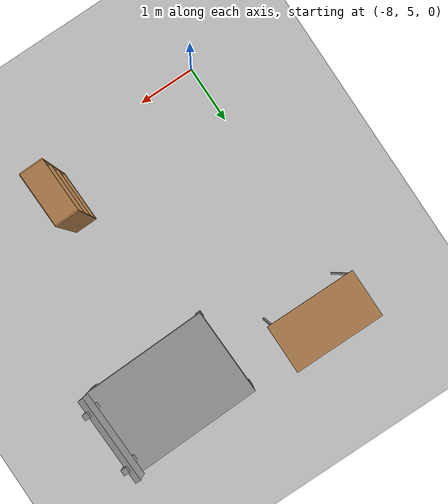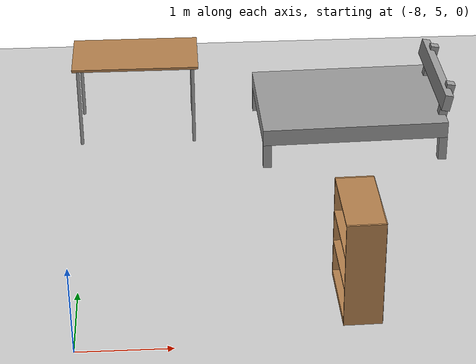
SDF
<sdf version="1.6">
 <world name="default">
  <model name="ground_plane">
   <static>1</static>
   <link name="link">
    <collision name="collision">
     <geometry><plane><normal>0 0 1</normal><size>100 100</size></plane></geometry>
     <surface><friction><ode><mu>100</mu><mu2>50</mu2></ode></friction></surface>
    </collision>
    <visual name="visual">
     <cast_shadows>0</cast_shadows>
     <geometry><plane><normal>0 0 1</normal><size>100 100</size></plane></geometry>
     <material>
      <script><uri>file://media/materials/scripts/gazebo.material</uri><name>Gazebo/Grey</name></script>
     </material>
    </visual>
   </link>
  </model>
  <model name="table_clone_1">
   <static>1</static>
   <link name="link">
    <collision name="surface">
     <pose>0 0 1 0 -0 0</pose>
     <geometry><box><size>1.5 0.8 0.03</size></box></geometry>
     <surface><friction><ode><mu>0.6</mu><mu2>0.6</mu2></ode></friction></surface>
    </collision>
    <visual name="visual1">
     <pose>0 0 1 0 -0 0</pose>
     <geometry><box><size>1.5 0.8 0.03</size></box></geometry>
     <material>
      <script><uri>file://media/materials/scripts/gazebo.material</uri><name>Gazebo/Wood</name></script>
     </material>
    </visual>
    <collision name="front_left_leg">
     <pose>0.68 0.38 0.5 0 -0 0</pose>
     <geometry><cylinder><radius>0.02</radius><length>1</length></cylinder></geometry>
    </collision>
    <visual name="front_left_leg">
     <pose>0.68 0.38 0.5 0 -0 0</pose>
     <geometry><cylinder><radius>0.02</radius><length>1</length></cylinder></geometry>
     <material>
      <script><uri>file://media/materials/scripts/gazebo.material</uri><name>Gazebo/Grey</name></script>
     </material>
    </visual>
    <collision name="front_right_leg">
     <pose>0.68 -0.38 0.5 0 -0 0</pose>
     <geometry><cylinder><radius>0.02</radius><length>1</length></cylinder></geometry>
    </collision>
    <visual name="front_right_leg">
     <pose>0.68 -0.38 0.5 0 -0 0</pose>
     <geometry><cylinder><radius>0.02</radius><length>1</length></cylinder></geometry>
     <material>
      <script><uri>file://media/materials/scripts/gazebo.material</uri><name>Gazebo/Grey</name></script>
     </material>
    </visual>
    <collision name="back_right_leg">
     <pose>-0.68 -0.38 0.5 0 -0 0</pose>
     <geometry><cylinder><radius>0.02</radius><length>1</length></cylinder></geometry>
    </collision>
    <visual name="back_right_leg">
     <pose>-0.68 -0.38 0.5 0 -0 0</pose>
     <geometry><cylinder><radius>0.02</radius><length>1</length></cylinder></geometry>
     <material>
      <script><uri>file://media/materials/scripts/gazebo.material</uri><name>Gazebo/Grey</name></script>
     </material>
    </visual>
    <collision name="back_left_leg">
     <pose>-0.68 0.38 0.5 0 -0 0</pose>
     <geometry><cylinder><radius>0.02</radius><length>1</length></cylinder></geometry>
    </collision>
    <visual name="back_left_leg">
     <pose>-0.68 0.38 0.5 0 -0 0</pose>
     <geometry><cylinder><radius>0.02</radius><length>1</length></cylinder></geometry>
     <material>
      <script><uri>file://media/materials/scripts/gazebo.material</uri><name>Gazebo/Grey</name></script>
     </material>
    </visual>
   </link>
   <pose>-7.38271 9.48873 0 0 -0 0</pose>
  </model>
  <model name="bookshelf_clone_0">
   <static>1</static>
   <link name="link">
    <inertial><mass>1</mass></inertial>
    <collision name="back">
     <pose>0 0.005 0.6 0 -0 0</pose>
     <geometry><box><size>0.9 0.01 1.2</size></box></geometry>
    </collision>
    <visual name="visual1">
     <pose>0 0.005 0.6 0 -0 0</pose>
     <geometry><box><size>0.9 0.01 1.2</size></box></geometry>
     <material>
      <script><uri>file://media/materials/scripts/gazebo.material</uri><name>Gazebo/Wood</name></script>
     </material>
    </visual>
    <collision name="left_side">
     <pose>0.45 -0.195 0.6 0 -0 0</pose>
     <geometry><box><size>0.02 0.4 1.2</size></box></geometry>
    </collision>
    <visual name="visual2">
     <pose>0.45 -0.195 0.6 0 -0 0</pose>
     <geometry><box><size>0.02 0.4 1.2</size></box></geometry>
     <material>
      <script><uri>file://media/materials/scripts/gazebo.material</uri><name>Gazebo/Wood</name></script>
     </material>
    </visual>
    <collision name="right_side">
     <pose>-0.45 -0.195 0.6 0 -0 0</pose>
     <geometry><box><size>0.02 0.4 1.2</size></box></geometry>
    </collision>
    <visual name="visual3">
     <pose>-0.45 -0.195 0.6 0 -0 0</pose>
     <geometry><box><size>0.02 0.4 1.2</size></box></geometry>
     <material>
      <script><uri>file://media/materials/scripts/gazebo.material</uri><name>Gazebo/Wood</name></script>
     </material>
    </visual>
    <collision name="bottom">
     <pose>0 -0.195 0.03 0 -0 0</pose>
     <geometry><box><size>0.88 0.4 0.06</size></box></geometry>
    </collision>
    <visual name="visual4">
     <pose>0 -0.195 0.03 0 -0 0</pose>
     <geometry><box><size>0.88 0.4 0.06</size></box></geometry>
     <material>
      <script><uri>file://media/materials/scripts/gazebo.material</uri><name>Gazebo/Wood</name></script>
     </material>
    </visual>
    <collision name="top">
     <pose>0 -0.195 1.19 0 -0 0</pose>
     <geometry><box><size>0.88 0.4 0.02</size></box></geometry>
    </collision>
    <visual name="visual5">
     <pose>0 -0.195 1.19 0 -0 0</pose>
     <geometry><box><size>0.88 0.4 0.02</size></box></geometry>
     <material>
      <script><uri>file://media/materials/scripts/gazebo.material</uri><name>Gazebo/Wood</name></script>
     </material>
    </visual>
    <collision name="low_shelf">
     <pose>0 -0.195 0.43 0 -0 0</pose>
     <geometry><box><size>0.88 0.4 0.02</size></box></geometry>
    </collision>
    <visual name="visual6">
     <pose>0 -0.195 0.43 0 -0 0</pose>
     <geometry><box><size>0.88 0.4 0.02</size></box></geometry>
     <material>
      <script><uri>file://media/materials/scripts/gazebo.material</uri><name>Gazebo/Wood</name></script>
     </material>
    </visual>
    <collision name="high_shelf">
     <pose>0 -0.195 0.8 0 -0 0</pose>
     <geometry><box><size>0.88 0.4 0.02</size></box></geometry>
    </collision>
    <visual name="visual7">
     <pose>0 -0.195 0.8 0 -0 0</pose>
     <geometry><box><size>0.88 0.4 0.02</size></box></geometry>
     <material>
      <script><uri>file://media/materials/scripts/gazebo.material</uri><name>Gazebo/Wood</name></script>
     </material>
    </visual>
   </link>
   <pose>-4.90514 5.73789 0 0 0 -1.5489</pose>
  </model>
  <model name="bed_clone_0">
   <link name="link_0">
    <pose>0.088421 0 0.349817 0 -0 0</pose>
    <inertial>
     <mass>1</mass>
     <inertia>
      <ixx>0.166667</ixx>
      <ixy>0</ixy>
      <ixz>0</ixz>
      <iyy>0.166667</iyy>
      <iyz>0</iyz>
      <izz>0.166667</izz>
     </inertia>
    </inertial>
    <visual name="visual">
     <geometry><box><size>2.2 1.5 0.2</size></box></geometry>
     <material>
      <lighting>1</lighting>
      <script><uri>file://media/materials/scripts/gazebo.material</uri><name>Gazebo/Grey</name></script>
      <shader type="pixel"><normal_map>__default__</normal_map></shader>
      <ambient>0.3 0.3 0.3 1</ambient>
      <diffuse>0.7 0.7 0.7 1</diffuse>
      <specular>0.01 0.01 0.01 1</specular>
      <emissive>0 0 0 1</emissive>
     </material>
    </visual>
    <collision name="collision">
     <geometry><box><size>2.2 1.5 0.2</size></box></geometry>
     <surface>
      <friction>
       <ode><mu>1</mu><mu2>1</mu2><fdir1>0 0 0</fdir1><slip1>0</slip1><slip2>0</slip2></ode>
       <torsional>
        <coefficient>1</coefficient>
        <patch_radius>0</patch_radius>
        <surface_radius>0</surface_radius>
        <use_patch_radius>1</use_patch_radius>
        <ode><slip>0</slip></ode>
       </torsional>
      </friction>
      <bounce><restitution_coefficient>0</restitution_coefficient><threshold>1e+06</threshold></bounce>
      <contact>
       <collide_without_contact>0</collide_without_contact>
       <collide_without_contact_bitmask>1</collide_without_contact_bitmask>
       <collide_bitmask>1</collide_bitmask>
       <ode>
        <soft_cfm>0</soft_cfm>
        <soft_erp>0.2</soft_erp>
        <kp>1e+13</kp>
        <kd>1</kd>
        <max_vel>0.01</max_vel>
        <min_depth>0</min_depth>
       </ode>
       <bullet>
        <split_impulse>1</split_impulse>
        <split_impulse_penetration_threshold>-0.01</split_impulse_penetration_threshold>
        <soft_cfm>0</soft_cfm>
        <soft_erp>0.2</soft_erp>
        <kp>1e+13</kp>
        <kd>1</kd>
       </bullet>
      </contact>
     </surface>
    </collision>
   </link>
   <link name="link_2">
    <pose>0.088421 0 0.099817 0 -0 0</pose>
    <inertial>
     <mass>1</mass>
     <inertia>
      <ixx>0.166667</ixx>
      <ixy>0</ixy>
      <ixz>0</ixz>
      <iyy>0.166667</iyy>
      <iyz>0</iyz>
      <izz>0.166667</izz>
     </inertia>
    </inertial>
    <visual name="visual">
     <geometry><box><size>0.1 0.1 0.3</size></box></geometry>
     <material>
      <lighting>1</lighting>
      <script><uri>file://media/materials/scripts/gazebo.material</uri><name>Gazebo/Grey</name></script>
      <shader type="pixel"><normal_map>__default__</normal_map></shader>
      <ambient>0.3 0.3 0.3 1</ambient>
      <diffuse>0.7 0.7 0.7 1</diffuse>
      <specular>0.01 0.01 0.01 1</specular>
      <emissive>0 0 0 1</emissive>
     </material>
    </visual>
    <collision name="collision">
     <geometry><box><size>0.1 0.1 0.3</size></box></geometry>
     <surface>
      <friction>
       <ode><mu>1</mu><mu2>1</mu2><fdir1>0 0 0</fdir1><slip1>0</slip1><slip2>0</slip2></ode>
       <torsional>
        <coefficient>1</coefficient>
        <patch_radius>0</patch_radius>
        <surface_radius>0</surface_radius>
        <use_patch_radius>1</use_patch_radius>
        <ode><slip>0</slip></ode>
       </torsional>
      </friction>
      <bounce><restitution_coefficient>0</restitution_coefficient><threshold>1e+06</threshold></bounce>
      <contact>
       <collide_without_contact>0</collide_without_contact>
       <collide_without_contact_bitmask>1</collide_without_contact_bitmask>
       <collide_bitmask>1</collide_bitmask>
       <ode>
        <soft_cfm>0</soft_cfm>
        <soft_erp>0.2</soft_erp>
        <kp>1e+13</kp>
        <kd>1</kd>
        <max_vel>0.01</max_vel>
        <min_depth>0</min_depth>
       </ode>
       <bullet>
        <split_impulse>1</split_impulse>
        <split_impulse_penetration_threshold>-0.01</split_impulse_penetration_threshold>
        <soft_cfm>0</soft_cfm>
        <soft_erp>0.2</soft_erp>
        <kp>1e+13</kp>
        <kd>1</kd>
       </bullet>
      </contact>
     </surface>
    </collision>
   </link>
   <link name="link_2_clone">
    <pose>-0.961579 -0.7 0.099817 0 -0 0</pose>
    <inertial>
     <mass>1</mass>
     <inertia>
      <ixx>0.166667</ixx>
      <ixy>0</ixy>
      <ixz>0</ixz>
      <iyy>0.166667</iyy>
      <iyz>0</iyz>
      <izz>0.166667</izz>
     </inertia>
    </inertial>
    <visual name="visual">
     <geometry><box><size>0.1 0.1 0.3</size></box></geometry>
     <material>
      <lighting>1</lighting>
      <script><uri>file://media/materials/scripts/gazebo.material</uri><name>Gazebo/Grey</name></script>
      <shader type="pixel"><normal_map>__default__</normal_map></shader>
      <ambient>0.3 0.3 0.3 1</ambient>
      <diffuse>0.7 0.7 0.7 1</diffuse>
      <specular>0.01 0.01 0.01 1</specular>
      <emissive>0 0 0 1</emissive>
     </material>
    </visual>
    <collision name="collision">
     <geometry><box><size>0.1 0.1 0.3</size></box></geometry>
     <surface>
      <friction>
       <ode><mu>1</mu><mu2>1</mu2><fdir1>0 0 0</fdir1><slip1>0</slip1><slip2>0</slip2></ode>
       <torsional>
        <coefficient>1</coefficient>
        <patch_radius>0</patch_radius>
        <surface_radius>0</surface_radius>
        <use_patch_radius>1</use_patch_radius>
        <ode><slip>0</slip></ode>
       </torsional>
      </friction>
      <bounce><restitution_coefficient>0</restitution_coefficient><threshold>1e+06</threshold></bounce>
      <contact>
       <collide_without_contact>0</collide_without_contact>
       <collide_without_contact_bitmask>1</collide_without_contact_bitmask>
       <collide_bitmask>1</collide_bitmask>
       <ode>
        <soft_cfm>0</soft_cfm>
        <soft_erp>0.2</soft_erp>
        <kp>1e+13</kp>
        <kd>1</kd>
        <max_vel>0.01</max_vel>
        <min_depth>0</min_depth>
       </ode>
       <bullet>
        <split_impulse>1</split_impulse>
        <split_impulse_penetration_threshold>-0.01</split_impulse_penetration_threshold>
        <soft_cfm>0</soft_cfm>
        <soft_erp>0.2</soft_erp>
        <kp>1e+13</kp>
        <kd>1</kd>
       </bullet>
      </contact>
     </surface>
    </collision>
   </link>
   <link name="link_2_clone_0">
    <pose>1.13842 -0.7 0.099817 0 -0 0</pose>
    <inertial>
     <mass>1</mass>
     <inertia>
      <ixx>0.166667</ixx>
      <ixy>0</ixy>
      <ixz>0</ixz>
      <iyy>0.166667</iyy>
      <iyz>0</iyz>
      <izz>0.166667</izz>
     </inertia>
    </inertial>
    <visual name="visual">
     <geometry><box><size>0.1 0.1 0.3</size></box></geometry>
     <material>
      <lighting>1</lighting>
      <script><uri>file://media/materials/scripts/gazebo.material</uri><name>Gazebo/Grey</name></script>
      <shader type="pixel"><normal_map>__default__</normal_map></shader>
      <ambient>0.3 0.3 0.3 1</ambient>
      <diffuse>0.7 0.7 0.7 1</diffuse>
      <specular>0.01 0.01 0.01 1</specular>
      <emissive>0 0 0 1</emissive>
     </material>
    </visual>
    <collision name="collision">
     <geometry><box><size>0.1 0.1 0.3</size></box></geometry>
     <surface>
      <friction>
       <ode><mu>1</mu><mu2>1</mu2><fdir1>0 0 0</fdir1><slip1>0</slip1><slip2>0</slip2></ode>
       <torsional>
        <coefficient>1</coefficient>
        <patch_radius>0</patch_radius>
        <surface_radius>0</surface_radius>
        <use_patch_radius>1</use_patch_radius>
        <ode><slip>0</slip></ode>
       </torsional>
      </friction>
      <bounce><restitution_coefficient>0</restitution_coefficient><threshold>1e+06</threshold></bounce>
      <contact>
       <collide_without_contact>0</collide_without_contact>
       <collide_without_contact_bitmask>1</collide_without_contact_bitmask>
       <collide_bitmask>1</collide_bitmask>
       <ode>
        <soft_cfm>0</soft_cfm>
        <soft_erp>0.2</soft_erp>
        <kp>1e+13</kp>
        <kd>1</kd>
        <max_vel>0.01</max_vel>
        <min_depth>0</min_depth>
       </ode>
       <bullet>
        <split_impulse>1</split_impulse>
        <split_impulse_penetration_threshold>-0.01</split_impulse_penetration_threshold>
        <soft_cfm>0</soft_cfm>
        <soft_erp>0.2</soft_erp>
        <kp>1e+13</kp>
        <kd>1</kd>
       </bullet>
      </contact>
     </surface>
    </collision>
   </link>
   <link name="link_2_clone_1">
    <pose>1.13842 0.7 0.099817 0 -0 0</pose>
    <inertial>
     <mass>1</mass>
     <inertia>
      <ixx>0.166667</ixx>
      <ixy>0</ixy>
      <ixz>0</ixz>
      <iyy>0.166667</iyy>
      <iyz>0</iyz>
      <izz>0.166667</izz>
     </inertia>
    </inertial>
    <visual name="visual">
     <geometry><box><size>0.1 0.1 0.3</size></box></geometry>
     <material>
      <lighting>1</lighting>
      <script><uri>file://media/materials/scripts/gazebo.material</uri><name>Gazebo/Grey</name></script>
      <shader type="pixel"><normal_map>__default__</normal_map></shader>
      <ambient>0.3 0.3 0.3 1</ambient>
      <diffuse>0.7 0.7 0.7 1</diffuse>
      <specular>0.01 0.01 0.01 1</specular>
      <emissive>0 0 0 1</emissive>
     </material>
    </visual>
    <collision name="collision">
     <geometry><box><size>0.1 0.1 0.3</size></box></geometry>
     <surface>
      <friction>
       <ode><mu>1</mu><mu2>1</mu2><fdir1>0 0 0</fdir1><slip1>0</slip1><slip2>0</slip2></ode>
       <torsional>
        <coefficient>1</coefficient>
        <patch_radius>0</patch_radius>
        <surface_radius>0</surface_radius>
        <use_patch_radius>1</use_patch_radius>
        <ode><slip>0</slip></ode>
       </torsional>
      </friction>
      <bounce><restitution_coefficient>0</restitution_coefficient><threshold>1e+06</threshold></bounce>
      <contact>
       <collide_without_contact>0</collide_without_contact>
       <collide_without_contact_bitmask>1</collide_without_contact_bitmask>
       <collide_bitmask>1</collide_bitmask>
       <ode>
        <soft_cfm>0</soft_cfm>
        <soft_erp>0.2</soft_erp>
        <kp>1e+13</kp>
        <kd>1</kd>
        <max_vel>0.01</max_vel>
        <min_depth>0</min_depth>
       </ode>
       <bullet>
        <split_impulse>1</split_impulse>
        <split_impulse_penetration_threshold>-0.01</split_impulse_penetration_threshold>
        <soft_cfm>0</soft_cfm>
        <soft_erp>0.2</soft_erp>
        <kp>1e+13</kp>
        <kd>1</kd>
       </bullet>
      </contact>
     </surface>
    </collision>
   </link>
   <link name="link_2_clone_2">
    <pose>-0.961579 0.7 0.099817 0 -0 0</pose>
    <inertial>
     <mass>1</mass>
     <inertia>
      <ixx>0.166667</ixx>
      <ixy>0</ixy>
      <ixz>0</ixz>
      <iyy>0.166667</iyy>
      <iyz>0</iyz>
      <izz>0.166667</izz>
     </inertia>
    </inertial>
    <visual name="visual">
     <geometry><box><size>0.1 0.1 0.3</size></box></geometry>
     <material>
      <lighting>1</lighting>
      <script><uri>file://media/materials/scripts/gazebo.material</uri><name>Gazebo/Grey</name></script>
      <shader type="pixel"><normal_map>__default__</normal_map></shader>
      <ambient>0.3 0.3 0.3 1</ambient>
      <diffuse>0.7 0.7 0.7 1</diffuse>
      <specular>0.01 0.01 0.01 1</specular>
      <emissive>0 0 0 1</emissive>
     </material>
    </visual>
    <collision name="collision">
     <geometry><box><size>0.1 0.1 0.3</size></box></geometry>
     <surface>
      <friction>
       <ode><mu>1</mu><mu2>1</mu2><fdir1>0 0 0</fdir1><slip1>0</slip1><slip2>0</slip2></ode>
       <torsional>
        <coefficient>1</coefficient>
        <patch_radius>0</patch_radius>
        <surface_radius>0</surface_radius>
        <use_patch_radius>1</use_patch_radius>
        <ode><slip>0</slip></ode>
       </torsional>
      </friction>
      <bounce><restitution_coefficient>0</restitution_coefficient><threshold>1e+06</threshold></bounce>
      <contact>
       <collide_without_contact>0</collide_without_contact>
       <collide_without_contact_bitmask>1</collide_without_contact_bitmask>
       <collide_bitmask>1</collide_bitmask>
       <ode>
        <soft_cfm>0</soft_cfm>
        <soft_erp>0.2</soft_erp>
        <kp>1e+13</kp>
        <kd>1</kd>
        <max_vel>0.01</max_vel>
        <min_depth>0</min_depth>
       </ode>
       <bullet>
        <split_impulse>1</split_impulse>
        <split_impulse_penetration_threshold>-0.01</split_impulse_penetration_threshold>
        <soft_cfm>0</soft_cfm>
        <soft_erp>0.2</soft_erp>
        <kp>1e+13</kp>
        <kd>1</kd>
       </bullet>
      </contact>
     </surface>
    </collision>
   </link>
   <link name="link_3">
    <pose>-1.01158 -0.5 0.599817 0 -0.196 0</pose>
    <inertial>
     <mass>1</mass>
     <inertia>
      <ixx>0.166667</ixx>
      <ixy>0</ixy>
      <ixz>0</ixz>
      <iyy>0.166667</iyy>
      <iyz>0</iyz>
      <izz>0.166667</izz>
     </inertia>
    </inertial>
    <visual name="visual">
     <geometry><box><size>0.1 0.1 0.5</size></box></geometry>
     <material>
      <lighting>1</lighting>
      <script><uri>file://media/materials/scripts/gazebo.material</uri><name>Gazebo/Grey</name></script>
      <shader type="pixel"><normal_map>__default__</normal_map></shader>
      <ambient>0.3 0.3 0.3 1</ambient>
      <diffuse>0.7 0.7 0.7 1</diffuse>
      <specular>0.01 0.01 0.01 1</specular>
      <emissive>0 0 0 1</emissive>
     </material>
    </visual>
    <collision name="collision">
     <geometry><box><size>0.1 0.1 0.5</size></box></geometry>
     <surface>
      <friction>
       <ode><mu>1</mu><mu2>1</mu2><fdir1>0 0 0</fdir1><slip1>0</slip1><slip2>0</slip2></ode>
       <torsional>
        <coefficient>1</coefficient>
        <patch_radius>0</patch_radius>
        <surface_radius>0</surface_radius>
        <use_patch_radius>1</use_patch_radius>
        <ode><slip>0</slip></ode>
       </torsional>
      </friction>
      <bounce><restitution_coefficient>0</restitution_coefficient><threshold>1e+06</threshold></bounce>
      <contact>
       <collide_without_contact>0</collide_without_contact>
       <collide_without_contact_bitmask>1</collide_without_contact_bitmask>
       <collide_bitmask>1</collide_bitmask>
       <ode>
        <soft_cfm>0</soft_cfm>
        <soft_erp>0.2</soft_erp>
        <kp>1e+13</kp>
        <kd>1</kd>
        <max_vel>0.01</max_vel>
        <min_depth>0</min_depth>
       </ode>
       <bullet>
        <split_impulse>1</split_impulse>
        <split_impulse_penetration_threshold>-0.01</split_impulse_penetration_threshold>
        <soft_cfm>0</soft_cfm>
        <soft_erp>0.2</soft_erp>
        <kp>1e+13</kp>
        <kd>1</kd>
       </bullet>
      </contact>
     </surface>
    </collision>
   </link>
   <link name="link_3_clone">
    <pose>-1.01158 0.5 0.599817 0 -0.196 0</pose>
    <inertial>
     <mass>1</mass>
     <inertia>
      <ixx>0.166667</ixx>
      <ixy>0</ixy>
      <ixz>0</ixz>
      <iyy>0.166667</iyy>
      <iyz>0</iyz>
      <izz>0.166667</izz>
     </inertia>
    </inertial>
    <visual name="visual">
     <geometry><box><size>0.1 0.1 0.5</size></box></geometry>
     <material>
      <lighting>1</lighting>
      <script><uri>file://media/materials/scripts/gazebo.material</uri><name>Gazebo/Grey</name></script>
      <shader type="pixel"><normal_map>__default__</normal_map></shader>
      <ambient>0.3 0.3 0.3 1</ambient>
      <diffuse>0.7 0.7 0.7 1</diffuse>
      <specular>0.01 0.01 0.01 1</specular>
      <emissive>0 0 0 1</emissive>
     </material>
    </visual>
    <collision name="collision">
     <geometry><box><size>0.1 0.1 0.5</size></box></geometry>
     <surface>
      <friction>
       <ode><mu>1</mu><mu2>1</mu2><fdir1>0 0 0</fdir1><slip1>0</slip1><slip2>0</slip2></ode>
       <torsional>
        <coefficient>1</coefficient>
        <patch_radius>0</patch_radius>
        <surface_radius>0</surface_radius>
        <use_patch_radius>1</use_patch_radius>
        <ode><slip>0</slip></ode>
       </torsional>
      </friction>
      <bounce><restitution_coefficient>0</restitution_coefficient><threshold>1e+06</threshold></bounce>
      <contact>
       <collide_without_contact>0</collide_without_contact>
       <collide_without_contact_bitmask>1</collide_without_contact_bitmask>
       <collide_bitmask>1</collide_bitmask>
       <ode>
        <soft_cfm>0</soft_cfm>
        <soft_erp>0.2</soft_erp>
        <kp>1e+13</kp>
        <kd>1</kd>
        <max_vel>0.01</max_vel>
        <min_depth>0</min_depth>
       </ode>
       <bullet>
        <split_impulse>1</split_impulse>
        <split_impulse_penetration_threshold>-0.01</split_impulse_penetration_threshold>
        <soft_cfm>0</soft_cfm>
        <soft_erp>0.2</soft_erp>
        <kp>1e+13</kp>
        <kd>1</kd>
       </bullet>
      </contact>
     </surface>
    </collision>
   </link>
   <link name="link_5">
    <pose>-0.982367 0 0.707711 0 -0.196 0</pose>
    <inertial>
     <mass>1</mass>
     <inertia>
      <ixx>0.166667</ixx>
      <ixy>0</ixy>
      <ixz>0</ixz>
      <iyy>0.166667</iyy>
      <iyz>0</iyz>
      <izz>0.166667</izz>
     </inertia>
    </inertial>
    <visual name="visual">
     <geometry><box><size>0.1 1.5 0.2</size></box></geometry>
     <material>
      <lighting>1</lighting>
      <script><uri>file://media/materials/scripts/gazebo.material</uri><name>Gazebo/Grey</name></script>
      <shader type="pixel"><normal_map>__default__</normal_map></shader>
      <ambient>0.3 0.3 0.3 1</ambient>
      <diffuse>0.7 0.7 0.7 1</diffuse>
      <specular>0.01 0.01 0.01 1</specular>
      <emissive>0 0 0 1</emissive>
     </material>
    </visual>
    <collision name="collision">
     <geometry><box><size>0.1 1.5 0.2</size></box></geometry>
     <surface>
      <friction>
       <ode><mu>1</mu><mu2>1</mu2><fdir1>0 0 0</fdir1><slip1>0</slip1><slip2>0</slip2></ode>
       <torsional>
        <coefficient>1</coefficient>
        <patch_radius>0</patch_radius>
        <surface_radius>0</surface_radius>
        <use_patch_radius>1</use_patch_radius>
        <ode><slip>0</slip></ode>
       </torsional>
      </friction>
      <bounce><restitution_coefficient>0</restitution_coefficient><threshold>1e+06</threshold></bounce>
      <contact>
       <collide_without_contact>0</collide_without_contact>
       <collide_without_contact_bitmask>1</collide_without_contact_bitmask>
       <collide_bitmask>1</collide_bitmask>
       <ode>
        <soft_cfm>0</soft_cfm>
        <soft_erp>0.2</soft_erp>
        <kp>1e+13</kp>
        <kd>1</kd>
        <max_vel>0.01</max_vel>
        <min_depth>0</min_depth>
       </ode>
       <bullet>
        <split_impulse>1</split_impulse>
        <split_impulse_penetration_threshold>-0.01</split_impulse_penetration_threshold>
        <soft_cfm>0</soft_cfm>
        <soft_erp>0.2</soft_erp>
        <kp>1e+13</kp>
        <kd>1</kd>
       </bullet>
      </contact>
     </surface>
    </collision>
   </link>
   <joint name="link_0_JOINT_0" type="fixed">
    <parent>link_0</parent>
    <child>link_2_clone</child>
    <physics>
     <ode><limit><cfm>0</cfm><erp>0.2</erp></limit><suspension><cfm>0</cfm><erp>0.2</erp></suspension></ode>
    </physics>
   </joint>
   <joint name="link_0_JOINT_1" type="fixed">
    <parent>link_0</parent>
    <child>link_2_clone_0</child>
    <physics>
     <ode><limit><cfm>0</cfm><erp>0.2</erp></limit><suspension><cfm>0</cfm><erp>0.2</erp></suspension></ode>
    </physics>
   </joint>
   <joint name="link_0_JOINT_2" type="fixed">
    <parent>link_0</parent>
    <child>link_2_clone_2</child>
    <physics>
     <ode><limit><cfm>0</cfm><erp>0.2</erp></limit><suspension><cfm>0</cfm><erp>0.2</erp></suspension></ode>
    </physics>
   </joint>
   <joint name="link_0_JOINT_3" type="fixed">
    <parent>link_0</parent>
    <child>link_2_clone_1</child>
    <physics>
     <ode><limit><cfm>0</cfm><erp>0.2</erp></limit><suspension><cfm>0</cfm><erp>0.2</erp></suspension></ode>
    </physics>
   </joint>
   <joint name="link_0_JOINT_4" type="fixed">
    <parent>link_0</parent>
    <child>link_2</child>
    <physics>
     <ode><limit><cfm>0</cfm><erp>0.2</erp></limit><suspension><cfm>0</cfm><erp>0.2</erp></suspension></ode>
    </physics>
   </joint>
   <joint name="link_0_JOINT_5" type="fixed">
    <parent>link_0</parent>
    <child>link_3</child>
    <physics>
     <ode><limit><cfm>0</cfm><erp>0.2</erp></limit><suspension><cfm>0</cfm><erp>0.2</erp></suspension></ode>
    </physics>
   </joint>
   <joint name="link_0_JOINT_6" type="fixed">
    <parent>link_0</parent>
    <child>link_3_clone</child>
    <physics>
     <ode><limit><cfm>0</cfm><erp>0.2</erp></limit><suspension><cfm>0</cfm><erp>0.2</erp></suspension></ode>
    </physics>
   </joint>
   <joint name="link_3_JOINT_9" type="fixed">
    <parent>link_3</parent>
    <child>link_5</child>
    <physics>
     <ode><limit><cfm>0</cfm><erp>0.2</erp></limit><suspension><cfm>0</cfm><erp>0.2</erp></suspension></ode>
    </physics>
   </joint>
   <static>0</static>
   <pose>-4.73569 9.19287 0.050183 1e-06 -0 -3.11104</pose>
  </model>
 </world>
</sdf>
